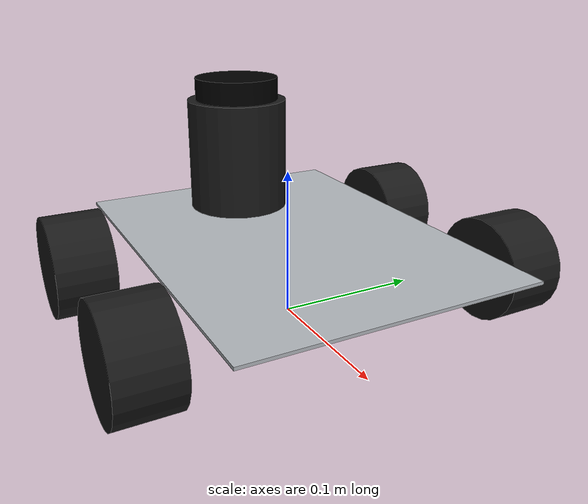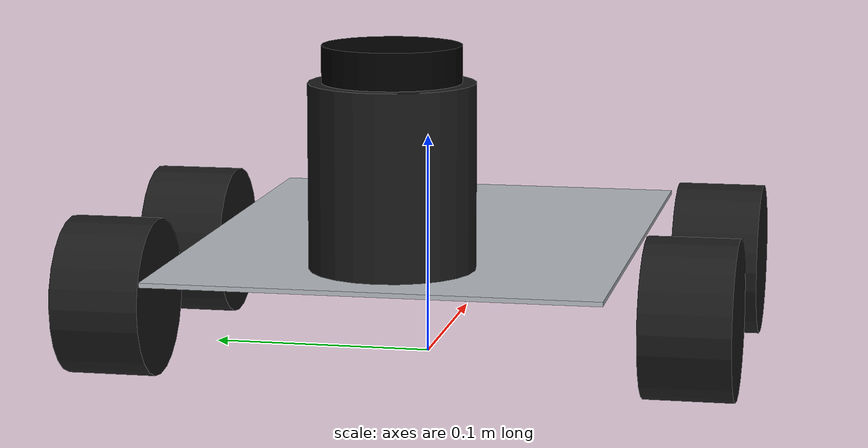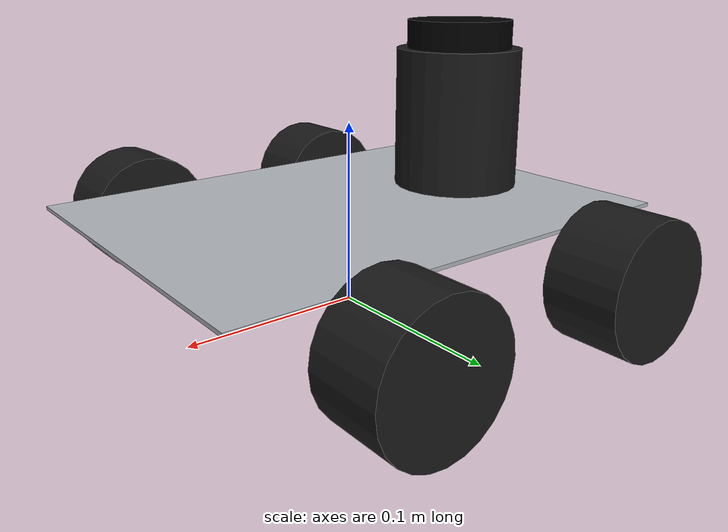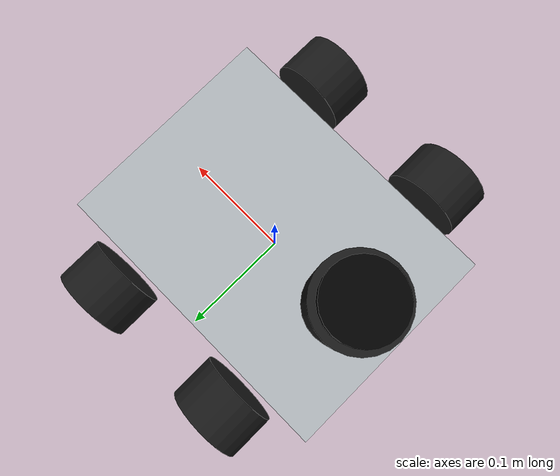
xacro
<?xml version="1.0"?>
<robot name="airavat_1.0" xmlns:xacro="http://www.ros.org/wiki/xacro">

    <xacro:include filename="my_airavat_1.0_common_prop.xacro"/>
    <xacro:include filename="my_airavat_1.0_base.xacro"/>
    <xacro:include filename="my_airavat_1.0_gazebo.xacro"/>
    <xacro:include filename="imu.xacro" />
    <xacro:include filename="lidar.xacro" />

</robot>

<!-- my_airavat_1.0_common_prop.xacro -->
<robot xmlns:xacro="https://www.ros.org/wiki/xacro">

    <material name="steel">
        <color rgba="0.70 0.72 0.74 1.0"/>
    </material>

    <material name="blrubber">
        <color rgba="0.1 0.1 0.1 1"/>
    </material>

    <xacro:macro name="box_inertia" params="m x y z o_xyz o_rpy">
        <inertial>
            <mass value="${m}" />
            <inertia ixx="${(1/12)*m*(y*y + z*z)}" ixy="0" ixz="0" iyy="${(1/12)*m*(x*x + z*z)}" iyz="0" izz="${(1/12)*m*(x*x + y*y)}" />
            <origin xyz="${o_xyz}" rpy="${o_rpy}" />
        </inertial>
    </xacro:macro>

    <xacro:macro name="wheel_inertia" params="m rad length o_xyz o_rpy">
        <inertial>
            <mass value="${m}" />
            <inertia ixx="${(1/12)*m*(3*rad*rad + length*length)}" ixy="0" ixz="0" iyy="${(1/2)*m*(rad*rad)}" iyz="0" izz="${(1/12)*m*(3*rad*rad + length*length)}" />
            <origin xyz="${o_xyz}" rpy="${o_rpy}" />
        </inertial>
    </xacro:macro>

</robot>

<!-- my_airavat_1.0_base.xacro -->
<robot name="airavat1.0" xmlns:xacro="https://www.ros.org/wiki/xacro">

    <xacro:property name="ch_length" value="0.264" />
    <xacro:property name="ch_width" value="0.195" />
    <xacro:property name="ch_height" value="0.002" />

    <xacro:property name="wh_width" value="0.0395" />
    <xacro:property name="wh_diameter" value="0.07" />

    <xacro:property name="wh_ch_dist" value = "0.007" />
    <xacro:property name="wh_ch_offset" value = "0.018" />

    <xacro:property name="wheelbase" value ="0.135" />
    <xacro:property name="trackwidth" value = "0.255" />

    <xacro:property name="ch_mass" value = "0.9" />
    <xacro:property name="wh_mass" value = "0.04" />

    <xacro:macro name="wheel_link" params="prefix">
        <link name="wheel_${prefix}">
            <visual>
                <geometry>
                    <cylinder radius = "${wh_diameter/2}" length = "${wh_width}" />
                </geometry>
                <origin xyz ="0 0 0" rpy = "${pi/2.0} 0 0" />
                <material name = "blrubber" />
            </visual>
            <collision>
                <geometry>
                    <sphere radius = "${wh_diameter/2}" />
                </geometry>
                <origin xyz ="0 0 0" rpy = "${pi/2} 0 0" />
            </collision>
            <xacro:wheel_inertia m="${wh_mass}" rad="${wh_diameter/2}" length="${wh_width}" o_xyz="0 0 0" o_rpy="${pi/2.0} 0 0" />
        </link>
    </xacro:macro>

    <link name="base_footprint">
        <inertial>
            <mass value = "0.01" />
            <inertia ixx="1e-4" ixy="0" ixz="0" iyy="1e-4" iyz="0" izz="1e-4" />
            <origin xyz="0 0 0" rpy="0 0 0" />
        </inertial>
    </link>

    <joint name="base_joint" type = "fixed">
        <parent link = "base_footprint" />
        <child link = "base_link" />
        <origin xyz = "0 0 ${wh_diameter/2 + wh_ch_offset + ch_height/2}" rpy = "0 0 0" />
    </joint>

    <link name = "base_link">
        <visual>
            <geometry>
                <box size = "${ch_length} ${ch_width} ${ch_height}" />
            </geometry>
            <origin xyz = "0 0 0" rpy = "0 0 0" />
            <material name="steel" />
        </visual>
        <collision>
            <geometry>
                <box size="${ch_length} ${ch_width} ${ch_height}" />
            </geometry>
            <origin xyz="0 0 0" rpy="0 0 0" />
        </collision>
        <xacro:box_inertia m="${ch_mass}" x="${ch_length}" y="${ch_width}" z="${ch_height}" o_xyz="0 0 0" o_rpy="0 0 0" />
    </link>

    <gazebo reference="base_link">
        <disable_link_lumping>true</disable_link_lumping>
    </gazebo>

    <xacro:wheel_link prefix="FL" />
    <xacro:wheel_link prefix="FR" />
    <xacro:wheel_link prefix="RR" />
    <xacro:wheel_link prefix="RL" />

    <joint name = "ch_wheel_FL" type = "continuous" >
        <parent link = "base_link" />
        <child link = "wheel_FL" />
        <axis xyz = "0 1 0" />
        <origin xyz = "${wheelbase/2} ${trackwidth/2} -${ch_height/2 + wh_ch_offset}" rpy = "0 0 0" />
    </joint>

    <joint name = "ch_wheel_FR" type = "continuous" >
        <parent link = "base_link" />
        <child link = "wheel_FR" />
        <axis xyz = "0 1 0" />
        <origin xyz = "${wheelbase/2} -${trackwidth/2} -${ch_height/2 + wh_ch_offset}" rpy = "0 0 0" />
    </joint>

    <joint name = "ch_wheel_RR" type = "continuous" >
        <parent link = "base_link" />
        <child link = "wheel_RR" />
        <axis xyz = "0 1 0" />
        <origin xyz = "-${wheelbase/2} -${trackwidth/2} -${ch_height/2 + wh_ch_offset}" rpy = "0 0 0" />
    </joint>

    <joint name = "ch_wheel_RL" type = "continuous" >
        <parent link = "base_link" />
        <child link = "wheel_RL" />
        <axis xyz = "0 1 0" />
        <origin xyz = "-${wheelbase/2} ${trackwidth/2} -${ch_height/2 + wh_ch_offset}" rpy = "0 0 0" />
    </joint>

</robot>

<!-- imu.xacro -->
<robot name="airavat1.0" xmlns:xacro="https://www.ros.org/wiki/xacro">
    <link name="imu_link">
        <inertial>
            <mass value = "0.01" />
            <inertia ixx="1e-4" ixy="0" ixz="0" iyy="1e-4" iyz="0" izz="1e-4" />
            <origin xyz="0 0 0" rpy="0 0 0" />
        </inertial>
    </link>

    <joint name="imu_joint" type = "fixed">
        <parent link = "base_link" />
        <child link = "imu_link" />
        <origin xyz = "0 0 0.089" rpy = "0 0 0" />
    </joint>
</robot>

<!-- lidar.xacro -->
<robot name="airavat1.0" xmlns:xacro="https://www.ros.org/wiki/xacro">

  <!-- LiDAR properties -->
  <xacro:property name="lidar_diameter" value="0.06" />
  <xacro:property name="lidar_height" value="0.016" />
  <xacro:property name="lidar_mass" value="0.075" />

  <xacro:property name="lidar_base_diameter" value="0.072" />
  <xacro:property name="lidar_base_height" value="0.08" />
  <xacro:property name="lidar_base_mass" value="0.050" />

  <!-- LiDAR Base Link -->
  <link name="lidar_base">
    <visual>
      <origin xyz="0 0 0" rpy="0 0 0"/>
      <geometry>
        <cylinder radius="${lidar_base_diameter/2}" length="${lidar_base_height}" />
      </geometry>
      <material name="gray">
        <color rgba="0.1 0.1 0.1 1" />
      </material>
    </visual>
    <collision>
      <origin xyz="0 0 0" rpy="0 0 0"/>
      <geometry>
        <cylinder radius="${lidar_base_diameter/2}" length="${lidar_base_height}" />
      </geometry>
    </collision>
    <xacro:wheel_inertia m="${lidar_base_mass}" rad="${lidar_base_diameter/2}" length="${lidar_base_height}" o_xyz="0 0 0" o_rpy="0 0 0" />
  </link>

  <!-- Joint connecting base_link to lidar_base -->
  <joint name="base_lidar_base_joint" type="fixed">
    <parent link="base_link" />
    <child link="lidar_base" />
    <origin xyz="-0.08 0 ${ch_height/2 + lidar_base_height/2}" rpy="0 0 0" />
  </joint>

  <!-- LiDAR Link -->
  <link name="lidar_frame">
    <visual>
      <origin xyz="0 0 0" rpy="0 0 0"/>
      <geometry>
        <cylinder radius="${lidar_diameter/2}" length="${lidar_height}"/>
      </geometry>
      <material name="black">
        <color rgba="0 0 0 1"/>
      </material>
    </visual>
    <collision>
      <origin xyz="0 0 0" rpy="0 0 0"/>
      <geometry>
        <cylinder radius="${lidar_diameter/2}" length="${lidar_height}"/>
      </geometry>
    </collision>
    <xacro:wheel_inertia m="${lidar_mass}" rad="${lidar_diameter/2}" length="${lidar_height}" o_xyz="0 0 0" o_rpy="0 0 0" />
  </link>

  <!-- Joint connecting lidar_base to laser_frame -->
  <joint name="lidar_joint" type="fixed">
    <parent link="lidar_base" />
    <child link="lidar_frame" />
    <origin xyz="0 0 ${lidar_base_height/2 + lidar_height/2}" rpy="0 0 0" />
  </joint>

</robot>
